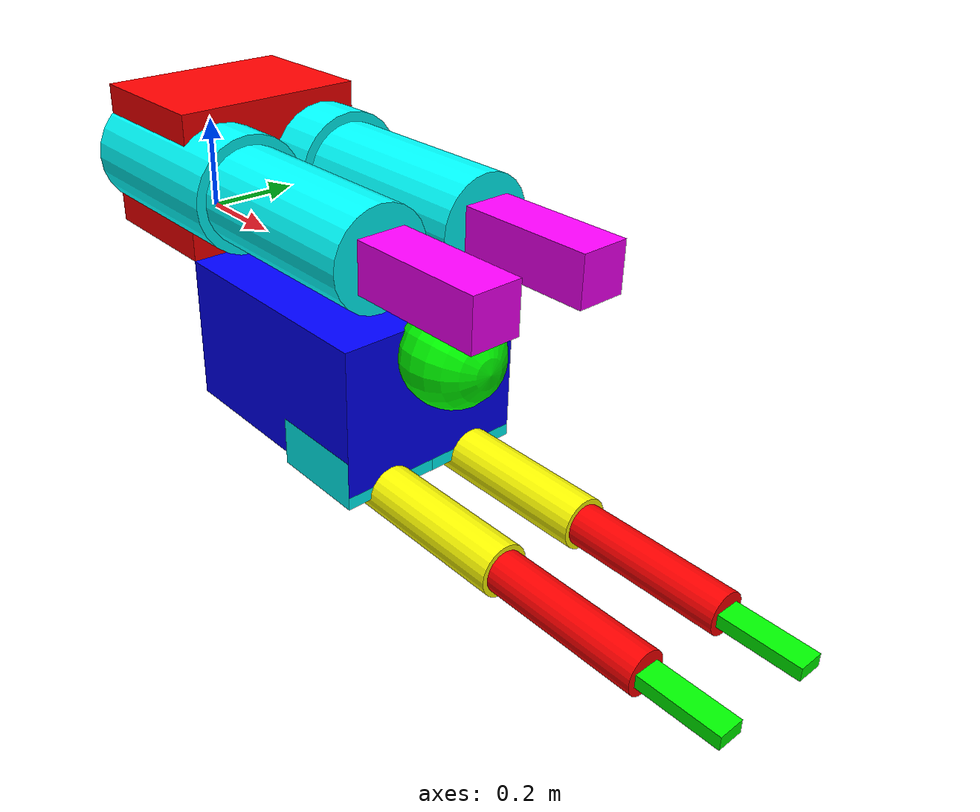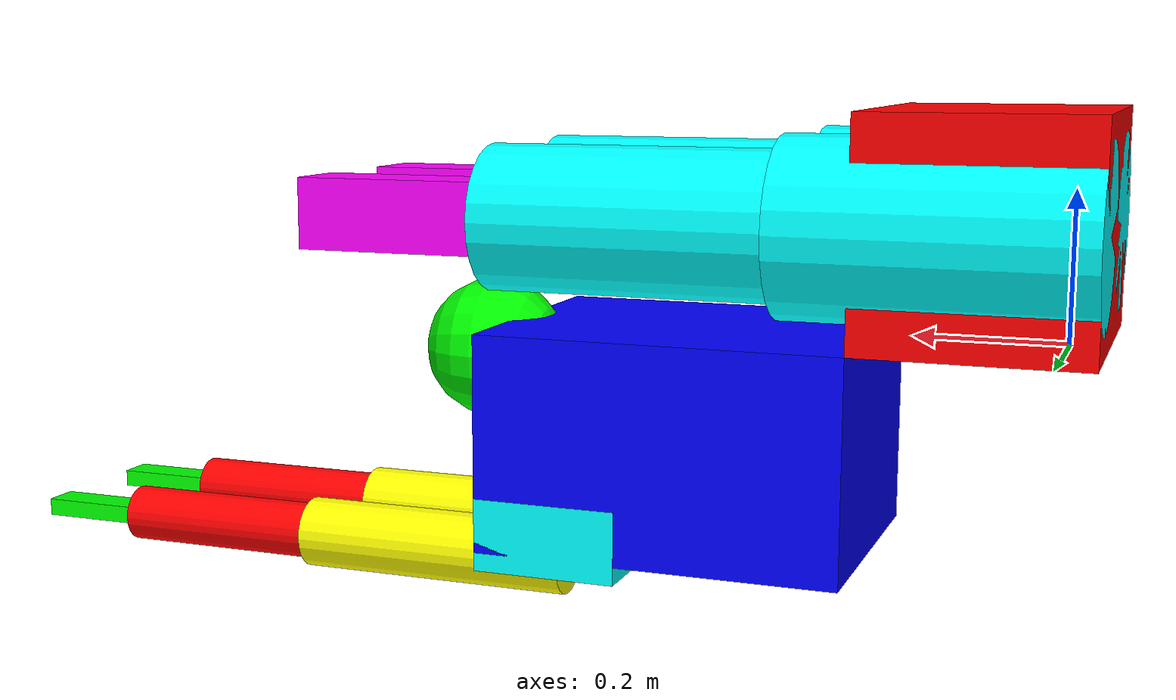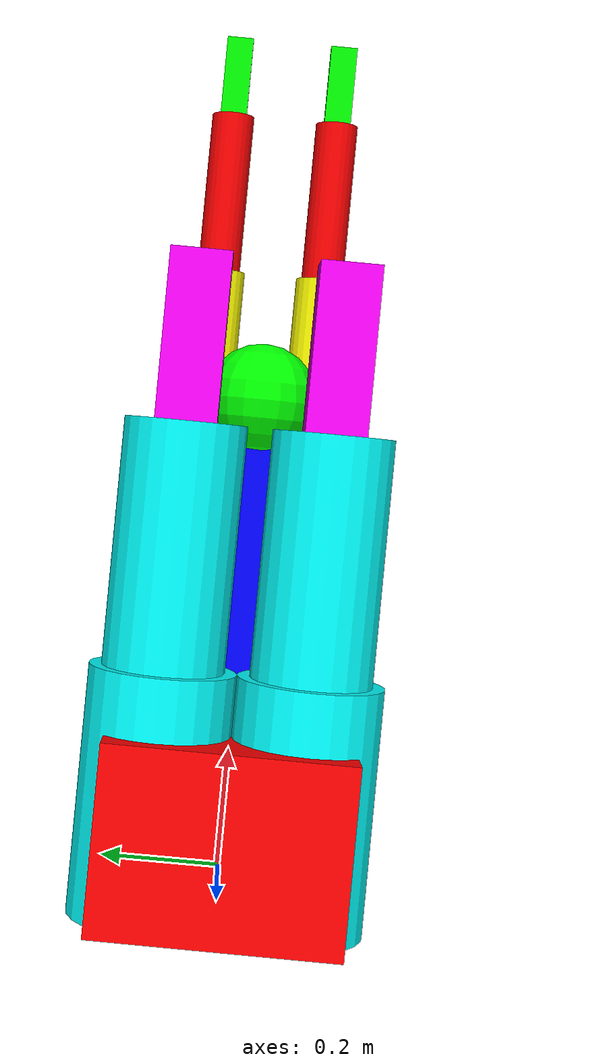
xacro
<?xml version="1.0"?>
<robot xmlns:xacro="http://www.ros.org/wiki/xacro" name="diver">
  <link name="local" />

  <!-- Torso parameters -->
  <xacro:property name="lower_h" value="0.3" />
  <xacro:property name="lower_w" value="0.4" />
  <xacro:property name="lower_d" value="0.3" />

  <xacro:property name="upper_h" value="0.5" />
  <xacro:property name="upper_w" value="0.4" />
  <xacro:property name="upper_d" value="0.3" />

    <xacro:property name="head_radius" value="0.1" />

    <!--  Leg parameters -->

    <!--  Arm parameters -->
    <xacro:property name="shoulder_distance" value="0.2" />

    <xacro:property name="shoulder_h" value="0.2" />
  <xacro:property name="shoulder_w" value="0.2" />
  <xacro:property name="shoulder_d" value="0.1" />

  <xacro:property name="upper_arm_radius" value="0.05" />
  <xacro:property name="upper_arm_length" value="0.4" />

  <xacro:property name="forearm_radius" value="0.04" />
  <xacro:property name="forearm_length" value="0.3" />

  <xacro:property name="hand_d" value="0.025" />
  <xacro:property name="hand_w" value="0.05" />
  <xacro:property name="hand_h" value="0.15" />

  <!-- Constants -->
  <xacro:property name="M_PI" value="3.14159" />

  <xacro:macro name="Joint3d"
    params="node parent *origin *geometry *color *origin_joint">
    <link name="${node}_2" />
    <link name="${node}_1" />
    <link name="${node}">
      <visual>
        <xacro:insert_block name="origin" />
        <geometry>
          <xacro:insert_block name="geometry" />
        </geometry>
        <material name="${node}_color">
          <xacro:insert_block name="color" />
        </material>
      </visual>
    </link>

    <joint name="${node}_z" type="continuous">
      <xacro:insert_block name="origin_joint" />
      <axis xyz="0 0 1" />
      <parent link="${parent}" />
      <child link="${node}_2" />
    </joint>

    <joint name="${node}_y" type="continuous">
      <axis xyz="0 1 0" />
      <parent link="${node}_2" />
      <child link="${node}_1" />
    </joint>

    <joint name="${node}_x" type="continuous">
      <axis xyz="1 0 0" />
      <parent link="${node}_1" />
      <child link="${node}" />
    </joint>
  </xacro:macro>

  <xacro:Joint3d node="lower_back" parent="local">
    <origin xyz="${lower_h/3} 0 ${-lower_d/2}" rpy="0 ${0.5*M_PI} 0" />
    <box size="${lower_d} ${lower_w} ${lower_h}"/>
    <color rgba="1 0 0 1" />
    <origin xyz="0 0 ${lower_h}"/>
  </xacro:Joint3d>

  <xacro:Joint3d node="upper_body" parent="lower_back">
    <origin xyz="${upper_h/2} 0 ${-upper_d/2}" rpy="0 ${0.5*M_PI} 0" />
    <box size="${upper_d} ${upper_w} ${upper_h}"/>
    <color rgba="0 0 1 1" />
    <origin xyz="${5*lower_h/6} 0 ${-lower_h}" />
  </xacro:Joint3d>

  <xacro:Joint3d node="head" parent="upper_body">
    <origin xyz="0 0 ${head_radius}" rpy="0 ${0.5*M_PI} 0" />
    <sphere radius="${head_radius}" />
    <color rgba="0 1 0 1" />
    <origin xyz="${head_radius/2 + upper_h} 0 ${-upper_d/2}" />
  </xacro:Joint3d>

  <xacro:Joint3d node="left_thigh" parent="lower_back">
    <origin xyz="0.2 0 0" rpy="0 ${0.5*M_PI} 0"/>
    <cylinder radius="0.12" length="0.4" />
    <color rgba="0 1 1 1" />
    <origin xyz="-0.05 0.12 -0.15" />
  </xacro:Joint3d>

  <xacro:Joint3d node="right_thigh" parent="lower_back">
    <origin xyz="0.2 0 0" rpy="0 ${0.5*M_PI} 0"/>
    <cylinder radius="0.12" length="0.4" />
    <color rgba="0 1 1 1" />
    <origin xyz="-0.05 -0.12 -0.15" />
  </xacro:Joint3d>

  <xacro:Joint3d node="right_calf" parent="right_thigh">
    <origin xyz="0.2 0 0" rpy="0 ${0.5*M_PI} 0"/>
    <cylinder radius="0.1" length="0.4" />
    <color rgba="0 1 1 1" />
    <origin xyz="0.4 0 0" />
  </xacro:Joint3d>

  <xacro:Joint3d node="left_calf" parent="left_thigh">
    <origin xyz="0.2 0 0" rpy="0 ${0.5*M_PI} 0"/>
    <cylinder radius="0.1" length="0.4" />
    <color rgba="0 1 1 1" />
    <origin xyz="0.4 0 0" />
  </xacro:Joint3d>

  <xacro:Joint3d node="right_foot" parent="right_calf">
    <origin xyz="0.1 0 0" rpy="0 ${0.5*M_PI} 0"/>
    <box size="0.1 0.1 0.35" />
    <color rgba="1 0 1 1" />
    <origin xyz="0.4 0 0" />
  </xacro:Joint3d>

  <xacro:Joint3d node="left_foot" parent="left_calf">
    <origin xyz="0.1 0 0" rpy="0 ${0.5*M_PI} 0"/>
    <box size="0.1 0.1 0.35" />
    <color rgba="1 0 1 1" />
    <origin xyz="0.4 0 0" />
  </xacro:Joint3d>

  <xacro:Joint3d node="left_shoulder" parent="upper_body">
    <origin xyz="0 0 0" rpy="0 ${0.5*M_PI} 0"/>
    <box size="${shoulder_d} ${shoulder_w} ${shoulder_h}" />
    <color rgba="0 1 1 1" />
    <origin xyz="${upper_h - shoulder_h/2} -${shoulder_distance/2} -${upper_d - shoulder_d/4}" />
  </xacro:Joint3d>

    <xacro:Joint3d node="right_shoulder" parent="upper_body">
    <origin xyz="0 0 0" rpy="0 ${0.5*M_PI} 0"/>
    <box size="${shoulder_d} ${shoulder_w} ${shoulder_h}" />
    <color rgba="0 1 1 1" />
    <origin xyz="${upper_h - shoulder_h/2} ${shoulder_distance/2} -${upper_d - shoulder_d/4}" />
  </xacro:Joint3d>

  <xacro:Joint3d node="left_upper_arm" parent="left_shoulder">
    <origin xyz="${upper_arm_length/4} 0 0" rpy="0 ${0.5*M_PI} 0"/>
    <cylinder radius="${upper_arm_radius}" length="${upper_arm_length}" />
    <color rgba="1 1 0 1" />
    <origin xyz="${shoulder_h/2} 0 -${shoulder_d/2}" />
  </xacro:Joint3d>

  <xacro:Joint3d node="right_upper_arm" parent="right_shoulder">
    <origin xyz="${upper_arm_length/4} 0 0" rpy="0 ${0.5*M_PI} 0"/>
    <cylinder radius="${upper_arm_radius}" length="${upper_arm_length}" />
    <color rgba="1 1 0 1" />
    <origin xyz="${shoulder_h/2} 0 -${shoulder_d/2}" />
  </xacro:Joint3d>

  <xacro:Joint3d node="left_forearm" parent="left_upper_arm">
    <origin xyz="${forearm_length/2} 0 0" rpy="0 ${0.5*M_PI} 0"/>
    <cylinder radius="${forearm_radius}" length="${forearm_length}" />
    <color rgba="1 0 0 1" />
    <origin xyz="${3*upper_arm_length/4} 0 0" />
  </xacro:Joint3d>

  <xacro:Joint3d node="right_forearm" parent="right_upper_arm">
    <origin xyz="${forearm_length/2} 0 0" rpy="0 ${0.5*M_PI} 0"/>
    <cylinder radius="${forearm_radius}" length="${forearm_length}" />
    <color rgba="1 0 0 1" />
    <origin xyz="${3*upper_arm_length/4} 0 0" />
  </xacro:Joint3d>

  <xacro:Joint3d node="left_hand" parent="left_forearm">
    <origin xyz="${hand_h/2} 0 0" rpy="0 ${0.5*M_PI} 0"/>
    <box size="${hand_d} ${hand_w} ${hand_h}" />
    <color rgba="0 1 0 1" />
    <origin xyz="${forearm_length} 0 0" />
  </xacro:Joint3d>

  <xacro:Joint3d node="right_hand" parent="right_forearm">
    <origin xyz="${hand_h/2} 0 0" rpy="0 ${0.5*M_PI} 0"/>
    <box size="${hand_d} ${hand_w} ${hand_h}" />
    <color rgba="0 1 0 1" />
    <origin xyz="${forearm_length} 0 0" />
  </xacro:Joint3d>
</robot>
